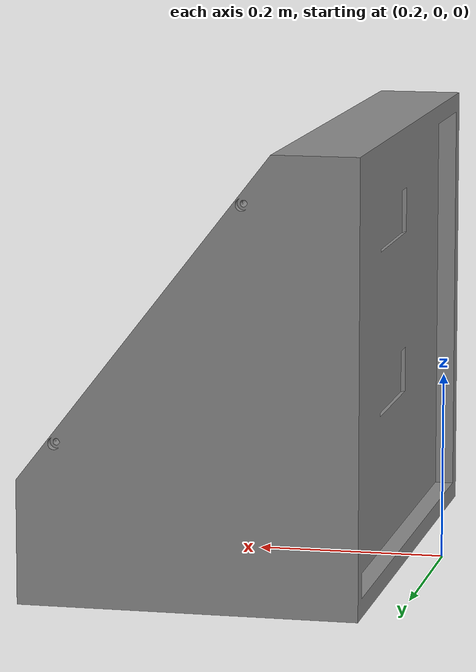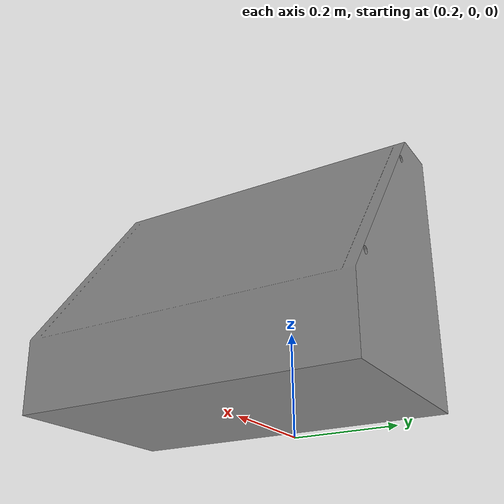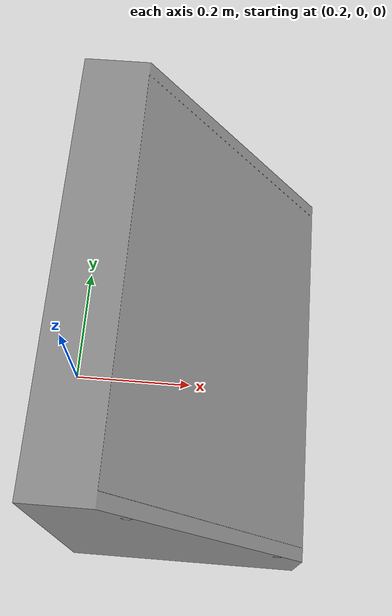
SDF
<?xml version="1.0" ?>
<sdf version="1.8">
  <model name="charging_dock">
    <static>true</static>

    <link name="base_link">

      <!-- ── STL mesh body ──────────────────────────────────────────── -->
      <!-- base_carregamento.stl is in mm; scale 0.001 converts to metres -->
      <visual name="body_visual">
        <geometry>
          <mesh>
            <uri>model://charging_dock/meshes/base_carregamento.stl</uri>
            <scale>0.001 0.001 0.001</scale>
          </mesh>
        </geometry>
        <material>
          <ambient>0.4 0.4 0.4 1</ambient>
          <diffuse>0.55 0.55 0.55 1</diffuse>
          <specular>0.1 0.1 0.1 1</specular>
        </material>
      </visual>

      <collision name="body_collision">
        <pose>0.4125 0 0.235 0 0 0</pose>
        <geometry>
          <box>
            <size>0.355 0.600 0.470</size>
          </box>
        </geometry>
      </collision>

    </link>
  </model>
</sdf>
